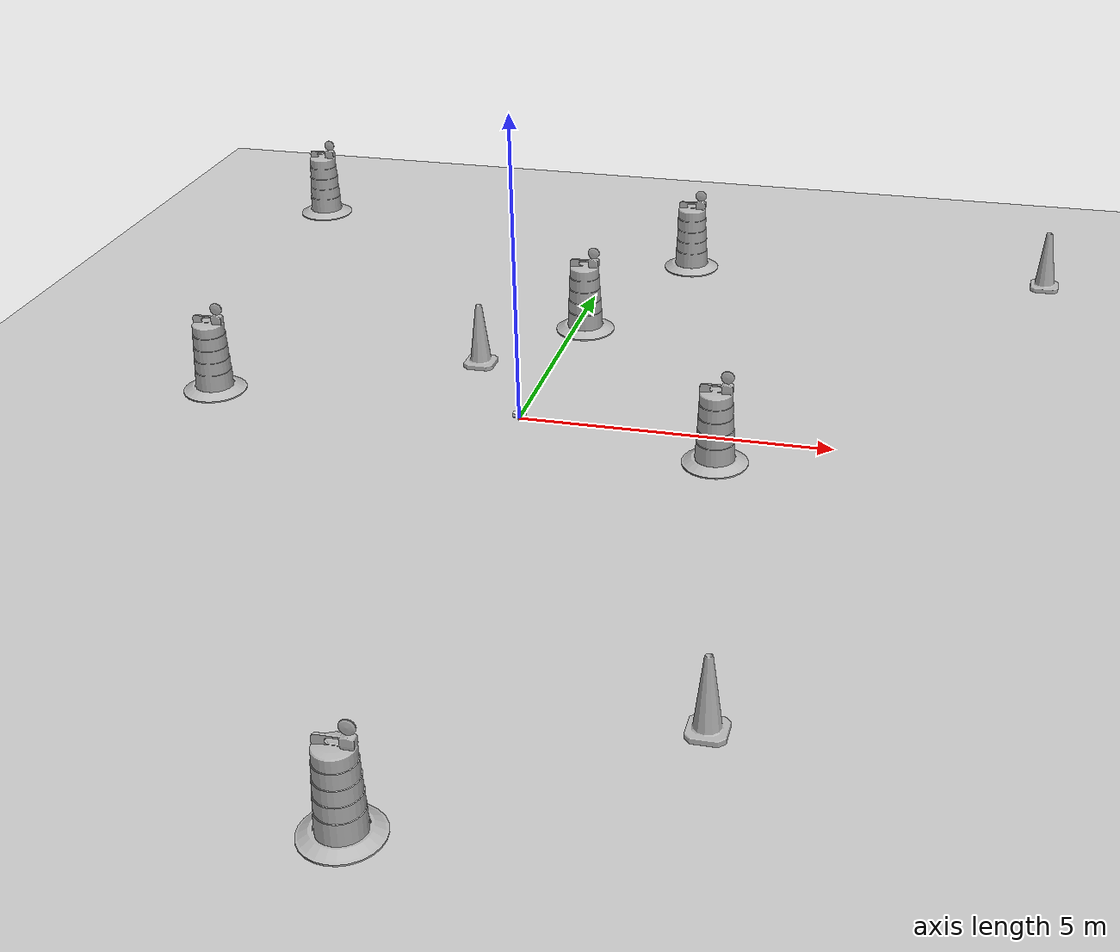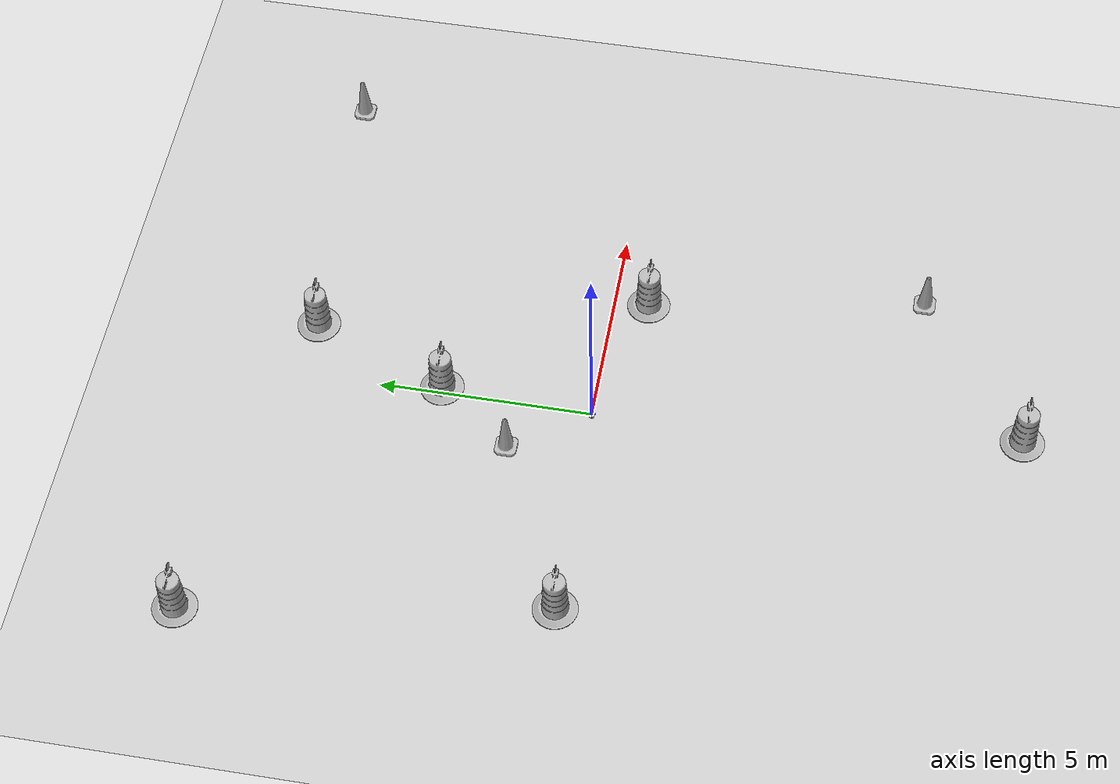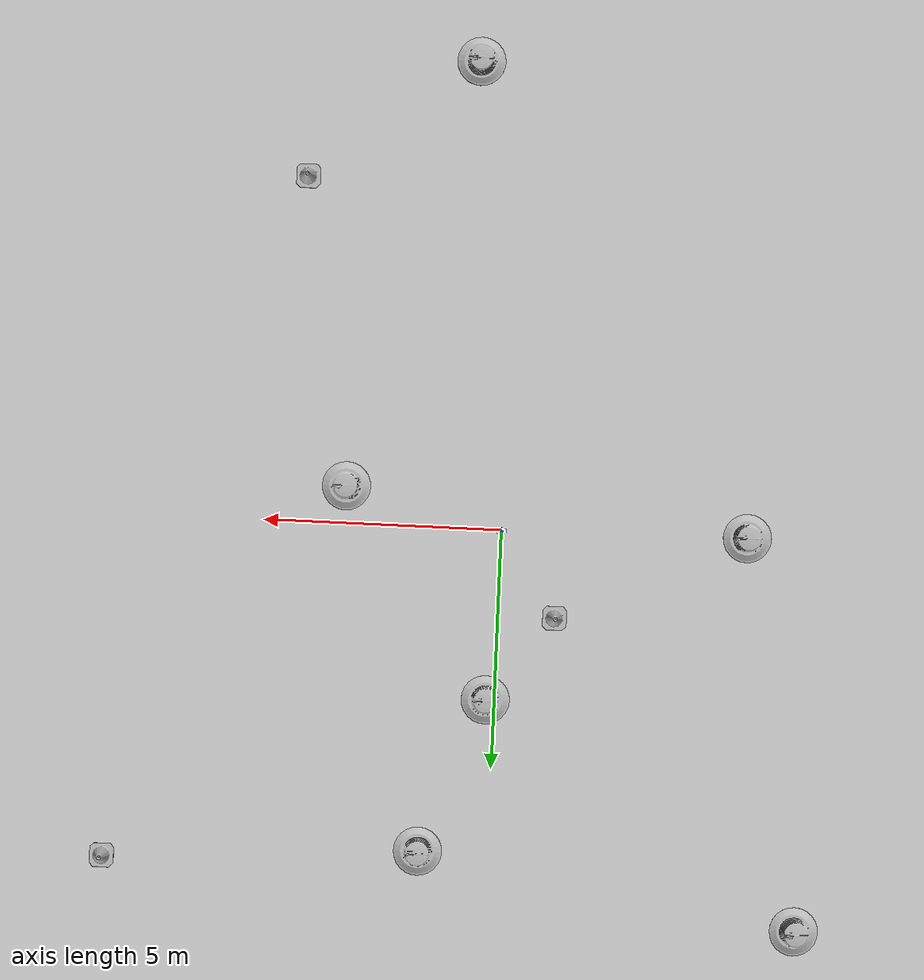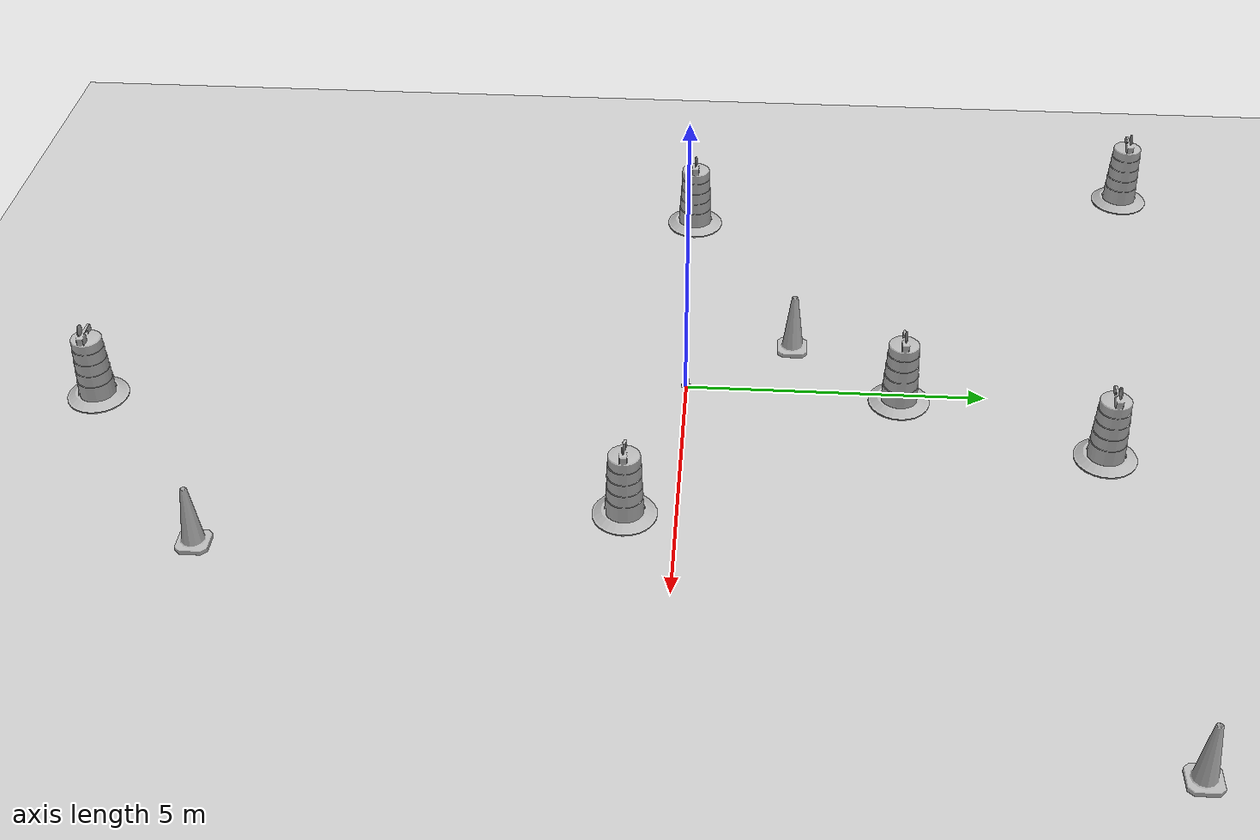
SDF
<sdf version="1.7">
 <world name="default">
  <light name="sun" type="directional">
   <pose>0 0 10 0 -0 0</pose>
   <diffuse>0.8 0.8 0.8 1</diffuse>
   <specular>0.2 0.2 0.2 1</specular>
   <attenuation>
    <range>1000</range>
    <constant>0.9</constant>
    <linear>0.01</linear>
    <quadratic>0.001</quadratic>
   </attenuation>
   <direction>-0.5 0.1 -0.9</direction>
   <spot><inner_angle>0</inner_angle><outer_angle>0</outer_angle><falloff>0</falloff></spot>
  </light>
  <model name="ground_plane">
   <static>1</static>
   <link name="link">
    <collision name="collision">
     <geometry><plane><normal>0 0 1</normal><size>100 100</size></plane></geometry>
     <surface>
      <contact><collide_bitmask>65535</collide_bitmask></contact>
      <friction><ode><mu>100</mu><mu2>50</mu2></ode></friction>
     </surface>
    </collision>
    <visual name="visual">
     <cast_shadows>0</cast_shadows>
     <geometry><plane><normal>0 0 1</normal><size>100 100</size></plane></geometry>
     <material>
      <script><uri>file://media/materials/scripts/gazebo.material</uri><name>Gazebo/Grey</name></script>
     </material>
    </visual>
   </link>
  </model>
  <gravity>0 0 -9.8</gravity>
  <magnetic_field>6e-06 2.3e-05 -4.2e-05</magnetic_field>
  <atmosphere type="adiabatic"/>
  <physics type="ode">
   <max_step_size>0.001</max_step_size>
   <real_time_factor>1</real_time_factor>
   <real_time_update_rate>1000</real_time_update_rate>
  </physics>
  <scene><ambient>0.4 0.4 0.4 1</ambient><background>0.7 0.7 0.7 1</background><shadows>1</shadows></scene>
  <audio><device>default</device></audio>
  <spherical_coordinates>
   <surface_model>EARTH_WGS84</surface_model>
   <latitude_deg>0</latitude_deg>
   <longitude_deg>0</longitude_deg>
   <elevation>0</elevation>
   <heading_deg>0</heading_deg>
  </spherical_coordinates>
  <model name="with_robot">
   <link name="base_link">
    <inertial>
     <pose>-0.031667 0 0.025 0 -0 0</pose>
     <mass>0.6</mass>
     <inertia>
      <ixx>0.000677667</ixx>
      <ixy>0</ixy>
      <ixz>-0.000175</ixz>
      <iyy>0.002336</iyy>
      <iyz>0</iyz>
      <izz>0.00252767</izz>
     </inertia>
    </inertial>
    <collision name="base_link_fixed_joint_lump__body_collision">
     <pose>-0.02 0 0.03 0 -0 0</pose>
     <geometry><box><size>0.2 0.1 0.06</size></box></geometry>
    </collision>
    <collision name="base_link_fixed_joint_lump__caster_wheel_collision_1">
     <pose>-0.09 0 0 0 -0 0</pose>
     <geometry><sphere><radius>0.03</radius></sphere></geometry>
     <surface><friction><ode><mu>0.001</mu><mu2>0.001</mu2></ode></friction></surface>
    </collision>
    <collision name="base_link_fixed_joint_lump__laser_frame_collision_2">
     <pose>-0.02 0 0.075 0 -0 0</pose>
     <geometry><cylinder><length>0.03</length><radius>0.03</radius></cylinder></geometry>
    </collision>
    <visual name="base_link_fixed_joint_lump__body_visual">
     <pose>-0.02 0 0.03 0 -0 0</pose>
     <geometry><box><size>0.2 0.1 0.06</size></box></geometry>
     <material>
      <script><name>Gazebo/White</name><uri>file://media/materials/scripts/gazebo.material</uri></script>
     </material>
    </visual>
    <visual name="base_link_fixed_joint_lump__caster_wheel_visual_1">
     <pose>-0.09 0 0 0 -0 0</pose>
     <geometry><sphere><radius>0.03</radius></sphere></geometry>
     <material>
      <script><name>Gazebo/Blue</name><uri>file://media/materials/scripts/gazebo.material</uri></script>
     </material>
    </visual>
    <visual name="base_link_fixed_joint_lump__laser_frame_visual_2">
     <pose>-0.02 0 0.075 0 -0 0</pose>
     <geometry><cylinder><length>0.03</length><radius>0.03</radius></cylinder></geometry>
     <material>
      <script><name>Gazebo/Red</name><uri>file://media/materials/scripts/gazebo.material</uri></script>
     </material>
    </visual>
    <sensor name="laser" type="ray">
     <visualize>1</visualize>
     <update_rate>10</update_rate>
     <ray>
      <scan>
       <horizontal>
        <samples>4</samples>
        <min_angle>-3.14</min_angle>
        <max_angle>3.14</max_angle>
        <resolution>1</resolution>
       </horizontal>
       <vertical><samples>1</samples><min_angle>0</min_angle><max_angle>0</max_angle></vertical>
      </scan>
      <range><min>0.3</min><max>12</max></range>
     </ray>
     <plugin name="laser_controller" filename="libgazebo_ros_ray_sensor.so">
      <ros><argument>~/out:=scan</argument></ros>
      <output_type>sensor_msgs/LaserScan</output_type>
      <frame_name>laser_frame</frame_name>
     </plugin>
     <pose>-0.02 0 0.075 0 -0 0</pose>
    </sensor>
   </link>
   <joint name="left_wheel_joint" type="revolute">
    <pose relative_to="base_link">0 0.065 0 -1.5708 0 0</pose>
    <parent>base_link</parent>
    <child>left_wheel</child>
    <axis>
     <xyz>0 0 1</xyz>
     <limit><lower>-1e+16</lower><upper>1e+16</upper></limit>
     <dynamics><spring_reference>0</spring_reference><spring_stiffness>0</spring_stiffness></dynamics>
    </axis>
   </joint>
   <link name="left_wheel">
    <pose relative_to="left_wheel_joint">0 0 0 0 -0 0</pose>
    <inertial>
     <mass>0.1</mass>
     <inertia><ixx>3e-05</ixx><ixy>0</ixy><ixz>0</ixz><iyy>3e-05</iyy><iyz>0</iyz><izz>4.5e-05</izz></inertia>
    </inertial>
    <collision name="left_wheel_collision">
     <geometry><cylinder><length>0.03</length><radius>0.03</radius></cylinder></geometry>
    </collision>
    <visual name="left_wheel_visual">
     <geometry><cylinder><length>0.03</length><radius>0.03</radius></cylinder></geometry>
     <material>
      <script><name>Gazebo/Black</name><uri>file://media/materials/scripts/gazebo.material</uri></script>
     </material>
    </visual>
   </link>
   <joint name="right_wheel_joint" type="revolute">
    <pose relative_to="base_link">0 -0.065 0 1.5708 -0 0</pose>
    <parent>base_link</parent>
    <child>right_wheel</child>
    <axis>
     <xyz>0 0 -1</xyz>
     <limit><lower>-1e+16</lower><upper>1e+16</upper></limit>
     <dynamics><spring_reference>0</spring_reference><spring_stiffness>0</spring_stiffness></dynamics>
    </axis>
   </joint>
   <link name="right_wheel">
    <pose relative_to="right_wheel_joint">0 0 0 0 -0 0</pose>
    <inertial>
     <mass>0.1</mass>
     <inertia><ixx>3e-05</ixx><ixy>0</ixy><ixz>0</ixz><iyy>3e-05</iyy><iyz>0</iyz><izz>4.5e-05</izz></inertia>
    </inertial>
    <collision name="right_wheel_collision">
     <geometry><cylinder><length>0.03</length><radius>0.03</radius></cylinder></geometry>
    </collision>
    <visual name="right_wheel_visual">
     <geometry><cylinder><length>0.03</length><radius>0.03</radius></cylinder></geometry>
     <material>
      <script><name>Gazebo/Black</name><uri>file://media/materials/scripts/gazebo.material</uri></script>
     </material>
    </visual>
   </link>
   <static>0</static>
   <plugin name="diff_drive" filename="libgazebo_ros_diff_drive.so">
    <left_joint>left_wheel_joint</left_joint>
    <right_joint>right_wheel_joint</right_joint>
    <wheel_separation>0.35</wheel_separation>
    <wheel_diameter>0.1</wheel_diameter>
    <max_wheel_torque>200</max_wheel_torque>
    <max_wheel_acceleration>10.0</max_wheel_acceleration>
    <odometry_frame>odom</odometry_frame>
    <robot_base_frame>base_link</robot_base_frame>
    <publish_odom>1</publish_odom>
    <publish_odom_tf>1</publish_odom_tf>
    <publish_wheel_tf>1</publish_wheel_tf>
   </plugin>
   <pose>0.01105 0.002781 0.030001 2e-06 -1e-05 0.029104</pose>
  </model>
  <model name="Construction Barrel">
   <link name="link">
    <inertial>
     <pose>0 0 0.4 0 -0 0</pose>
     <mass>500</mass>
     <inertia><ixx>51.2096</ixx><iyy>51.2096</iyy><izz>25</izz><ixy>0</ixy><ixz>0</ixz><iyz>0</iyz></inertia>
    </inertial>
    <collision name="collision">
     <geometry><mesh><uri>model://construction_barrel/meshes/construction_barrel.dae</uri></mesh></geometry>
    </collision>
    <visual name="visual">
     <geometry><mesh><uri>model://construction_barrel/meshes/construction_barrel.dae</uri></mesh></geometry>
    </visual>
   </link>
   <pose>-5.16932 -0.068072 -0 0 -0 -2.2e-05</pose>
  </model>
  <model name="Construction Cone">
   <link name="link">
    <collision name="collision">
     <geometry>
      <mesh><scale>10 10 10</scale><uri>model://construction_cone/meshes/construction_cone.dae</uri></mesh>
     </geometry>
    </collision>
    <visual name="visual">
     <geometry>
      <mesh><scale>10 10 10</scale><uri>model://construction_cone/meshes/construction_cone.dae</uri></mesh>
     </geometry>
    </visual>
    <inertial>
     <inertia><ixx>1</ixx><ixy>0</ixy><ixz>0</ixz><iyy>1</iyy><iyz>0</iyz><izz>1</izz></inertia>
     <mass>1</mass>
    </inertial>
   </link>
   <pose>-1.19494 1.78688 -0 0 -0 0</pose>
  </model>
  <model name="Construction Barrel_0">
   <link name="link">
    <inertial>
     <pose>0 0 0.4 0 -0 0</pose>
     <mass>500</mass>
     <inertia><ixx>51.2096</ixx><iyy>51.2096</iyy><izz>25</izz><ixy>0</ixy><ixz>0</ixz><iyz>0</iyz></inertia>
    </inertial>
    <collision name="collision">
     <geometry><mesh><uri>model://construction_barrel/meshes/construction_barrel.dae</uri></mesh></geometry>
    </collision>
    <visual name="visual">
     <geometry><mesh><uri>model://construction_barrel/meshes/construction_barrel.dae</uri></mesh></geometry>
    </visual>
   </link>
   <pose>3.29263 -0.797358 -1e-06 1e-06 4e-06 -2.5e-05</pose>
  </model>
  <model name="Construction Barrel_1">
   <link name="link">
    <inertial>
     <pose>0 0 0.4 0 -0 0</pose>
     <mass>500</mass>
     <inertia><ixx>51.2096</ixx><iyy>51.2096</iyy><izz>25</izz><ixy>0</ixy><ixz>0</ixz><iyz>0</iyz></inertia>
    </inertial>
    <collision name="collision">
     <geometry><mesh><uri>model://construction_barrel/meshes/construction_barrel.dae</uri></mesh></geometry>
    </collision>
    <visual name="visual">
     <geometry><mesh><uri>model://construction_barrel/meshes/construction_barrel.dae</uri></mesh></geometry>
    </visual>
   </link>
   <pose>0.17904 3.56029 -4e-06 -3e-06 -1e-05 -1.8e-05</pose>
  </model>
  <model name="Construction Cone_0">
   <link name="link">
    <collision name="collision">
     <geometry>
      <mesh><scale>10 10 10</scale><uri>model://construction_cone/meshes/construction_cone.dae</uri></mesh>
     </geometry>
    </collision>
    <visual name="visual">
     <geometry>
      <mesh><scale>10 10 10</scale><uri>model://construction_cone/meshes/construction_cone.dae</uri></mesh>
     </geometry>
    </visual>
    <inertial>
     <inertia><ixx>1</ixx><ixy>0</ixy><ixz>0</ixz><iyy>1</iyy><iyz>0</iyz><izz>1</izz></inertia>
     <mass>1</mass>
    </inertial>
   </link>
   <pose>4.37843 -7.26016 -6e-06 -4e-06 0 0</pose>
  </model>
  <model name="Construction Barrel_2">
   <link name="link">
    <inertial>
     <pose>0 0 0.4 0 -0 0</pose>
     <mass>500</mass>
     <inertia><ixx>51.2096</ixx><iyy>51.2096</iyy><izz>25</izz><ixy>0</ixy><ixz>0</ixz><iyz>0</iyz></inertia>
    </inertial>
    <collision name="collision">
     <geometry><mesh><uri>model://construction_barrel/meshes/construction_barrel.dae</uri></mesh></geometry>
    </collision>
    <visual name="visual">
     <geometry><mesh><uri>model://construction_barrel/meshes/construction_barrel.dae</uri></mesh></geometry>
    </visual>
   </link>
   <pose>1.45995 6.7987 -2e-06 -4e-06 7e-06 -2e-05</pose>
  </model>
  <model name="Construction Barrel_3">
   <link name="link">
    <inertial>
     <pose>0 0 0.4 0 -0 0</pose>
     <mass>500</mass>
     <inertia><ixx>51.2096</ixx><iyy>51.2096</iyy><izz>25</izz><ixy>0</ixy><ixz>0</ixz><iyz>0</iyz></inertia>
    </inertial>
    <collision name="collision">
     <geometry><mesh><uri>model://construction_barrel/meshes/construction_barrel.dae</uri></mesh></geometry>
    </collision>
    <visual name="visual">
     <geometry><mesh><uri>model://construction_barrel/meshes/construction_barrel.dae</uri></mesh></geometry>
    </visual>
   </link>
   <pose>-6.50439 8.13493 1e-06 3e-06 2e-06 -1.4e-05</pose>
  </model>
  <model name="Construction Barrel_4">
   <link name="link">
    <inertial>
     <pose>0 0 0.4 0 -0 0</pose>
     <mass>500</mass>
     <inertia><ixx>51.2096</ixx><iyy>51.2096</iyy><izz>25</izz><ixy>0</ixy><ixz>0</ixz><iyz>0</iyz></inertia>
    </inertial>
    <collision name="collision">
     <geometry><mesh><uri>model://construction_barrel/meshes/construction_barrel.dae</uri></mesh></geometry>
    </collision>
    <visual name="visual">
     <geometry><mesh><uri>model://construction_barrel/meshes/construction_barrel.dae</uri></mesh></geometry>
    </visual>
   </link>
   <pose>0.853021 -9.82688 -1e-06 2e-06 -1e-06 -1.9e-05</pose>
  </model>
  <model name="Construction Cone_1">
   <link name="link">
    <collision name="collision">
     <geometry>
      <mesh><scale>10 10 10</scale><uri>model://construction_cone/meshes/construction_cone.dae</uri></mesh>
     </geometry>
    </collision>
    <visual name="visual">
     <geometry>
      <mesh><scale>10 10 10</scale><uri>model://construction_cone/meshes/construction_cone.dae</uri></mesh>
     </geometry>
    </visual>
    <inertial>
     <inertia><ixx>1</ixx><ixy>0</ixy><ixz>0</ixz><iyy>1</iyy><iyz>0</iyz><izz>1</izz></inertia>
     <mass>1</mass>
    </inertial>
   </link>
   <pose>8.08543 7.17633 -0 0 -1e-06 0</pose>
  </model>
 </world>
</sdf>
